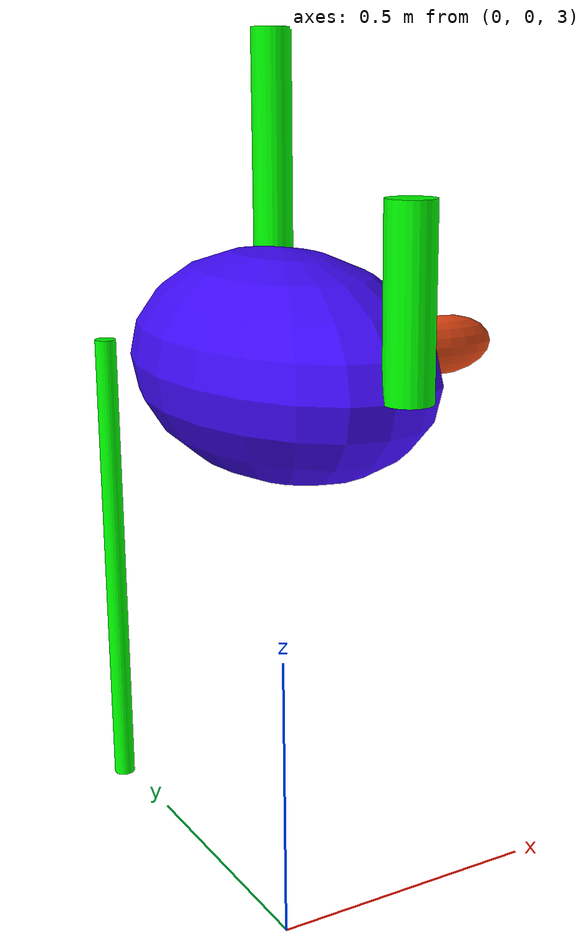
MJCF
<mujoco model="unnamed_model">
  <option timestep="0.01"/>
  <visual>
    <headlight ambient="0.5 0.5 0.5"/>
  </visual>
  <default>
    <default class="/"/>
  </default>
  <worldbody>
    <light name="//unnamed_light_0" class="/" pos="0 0 3" dir="0 0 -1" diffuse="0.5 0.5 0.5"/>
    <geom name="//unnamed_geom_0" class="/" type="plane" size="50 50 0.10000000000000001"/>
    <body name="//unnamed_body_0" pos="0 0 4">
      <joint name="//unnamed_joint_0" class="/" type="free"/>
      <geom name="//unnamed_geom_1" class="/" type="ellipsoid" size="0.20517978357399941 0.32827401439382653 0.17708353027529414" rgba="0.247 0.035000000000000003 0.97999999999999998 1" pos="0 0 0"/>
      <geom name="//unnamed_geom_2" class="/" type="ellipsoid" size="0.096777388067847692 0.030410538643048241 0.048868979406581262" rgba="0.91000000000000003 0.27800000000000002 0.070999999999999994 1" pos="0.3019571716418471 0 0"/>
      <body name="limb0" pos="0.16753924216469795 0.32827401439382653 0.25209861335193351">
        <geom name="//unnamed_geom_3" class="/" type="cylinder" size="0.034738534367654145 0.25209861335193351" rgba="0 1 0 1"/>
        <joint name="0_joint" class="/" type="hinge" pos="0 0 -0.25209861335193351" axis="0 1 0" range="-45 45"/>
      </body>
      <body name="limb1" pos="0.018473458356370209 -0.32827401439382653 0.13698860831119655">
        <geom name="//unnamed_geom_4" class="/" type="cylinder" size="0.036324887078957806 0.13698860831119655" rgba="0 1 0 1"/>
        <joint name="1_joint" class="/" type="hinge" pos="0 0 -0.13698860831119655" axis="0 1 0" range="-45 45"/>
      </body>
      <body name="limb2" pos="-0.15483506322859344 0.32827401439382653 -0.39973078972389275">
        <geom name="//unnamed_geom_5" class="/" type="cylinder" size="0.017753062977577456 0.39973078972389275" rgba="0 1 0 1"/>
        <joint name="2_joint" class="/" type="hinge" pos="0 0 0.39973078972389275" axis="0 1 0" range="-45 45"/>
      </body>
    </body>
  </worldbody>
  <actuator>
    <motor name="motor_0_joint" class="/" ctrllimited="true" ctrlrange="-45 45" gear="10" joint="0_joint"/>
    <motor name="motor_1_joint" class="/" ctrllimited="true" ctrlrange="-45 45" gear="10" joint="1_joint"/>
    <motor name="motor_2_joint" class="/" ctrllimited="true" ctrlrange="-45 45" gear="10" joint="2_joint"/>
  </actuator>
</mujoco>
